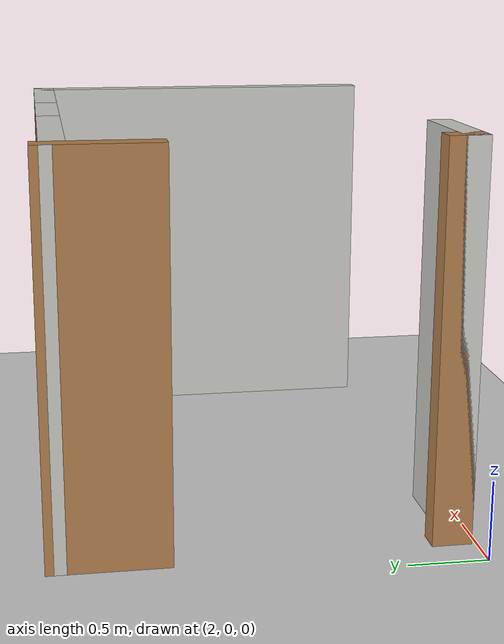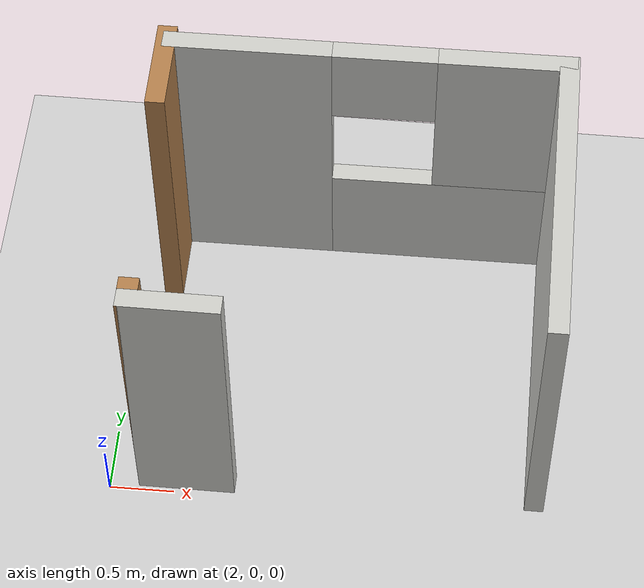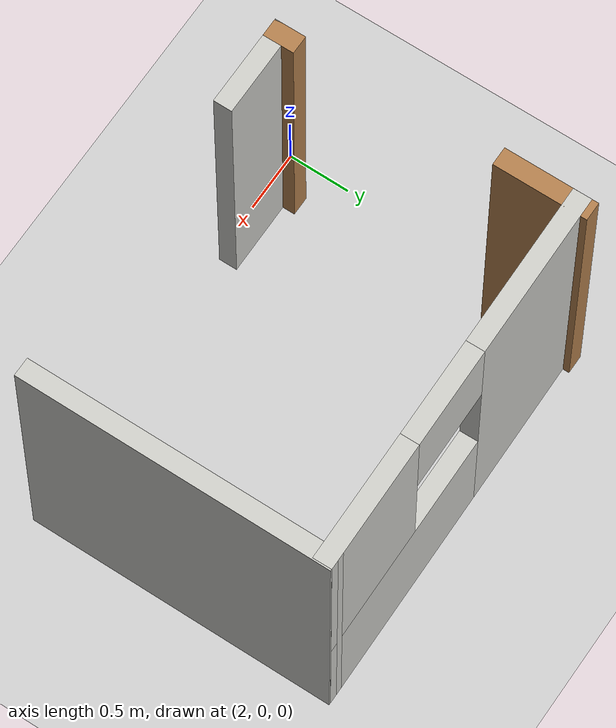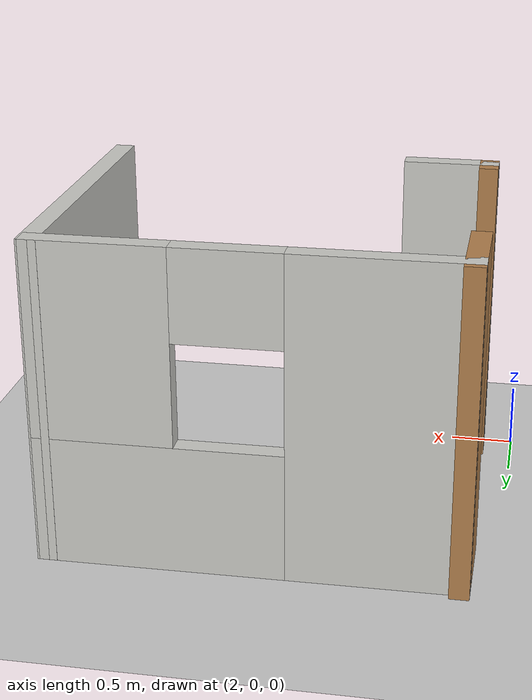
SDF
<sdf version="1.6">
 <world name="default">
  <light name="sun" type="directional">
   <pose>0 0 10 0 -0 0</pose>
   <diffuse>0.8 0.8 0.8 1</diffuse>
   <specular>0.2 0.2 0.2 1</specular>
   <attenuation>
    <range>1000</range>
    <constant>0.9</constant>
    <linear>0.01</linear>
    <quadratic>0.001</quadratic>
   </attenuation>
   <direction>-0.5 0.1 -0.9</direction>
  </light>
  <model name="ground_plane">
   <static>1</static>
   <link name="link">
    <collision name="collision">
     <geometry><plane><normal>0 0 1</normal><size>100 100</size></plane></geometry>
     <surface>
      <contact><collide_bitmask>65535</collide_bitmask></contact>
      <friction><ode><mu>100</mu><mu2>50</mu2></ode></friction>
     </surface>
    </collision>
    <visual name="visual">
     <cast_shadows>0</cast_shadows>
     <geometry><plane><normal>0 0 1</normal><size>100 100</size></plane></geometry>
     <material>
      <script><uri>file://media/materials/scripts/gazebo.material</uri><name>Gazebo/Grey</name></script>
     </material>
    </visual>
   </link>
  </model>
  <gravity>0 0 -9.8</gravity>
  <magnetic_field>6e-06 2.3e-05 -4.2e-05</magnetic_field>
  <atmosphere type="adiabatic"/>
  <physics name="default_physics" default="0" type="ode">
   <max_step_size>0.001</max_step_size>
   <real_time_factor>1</real_time_factor>
   <real_time_update_rate>1000</real_time_update_rate>
  </physics>
  <scene><ambient>0.4 0.4 0.4 1</ambient><background>0.7 0.7 0.7 1</background><shadows>1</shadows></scene>
  <audio><device>default</device></audio>
  <spherical_coordinates>
   <surface_model>EARTH_WGS84</surface_model>
   <latitude_deg>0</latitude_deg>
   <longitude_deg>0</longitude_deg>
   <elevation>0</elevation>
   <heading_deg>0</heading_deg>
  </spherical_coordinates>
  <model name="restroom">
   <pose>3.782 1.32237 0 0 -0 0</pose>
   <link name="Wall_12">
    <collision name="Wall_12_Collision">
     <geometry><box><size>0.75 0.15 2.5</size></box></geometry>
     <pose>0 0 1.25 0 -0 0</pose>
    </collision>
    <visual name="Wall_12_Visual">
     <pose>0 0 1.25 0 -0 0</pose>
     <geometry><box><size>0.75 0.15 2.5</size></box></geometry>
     <material>
      <script><uri>file://media/materials/scripts/gazebo.material</uri><name>Gazebo/Wood</name></script>
      <ambient>1 1 1 1</ambient>
     </material>
     <meta><layer>0</layer></meta>
    </visual>
    <pose>-1.52425 0.914238 0 0 -0 -1.5708</pose>
   </link>
   <link name="Wall_14">
    <pose>-0.006278 1.17375 0 0 -0 0.007976</pose>
    <visual name="Wall_14_Visual_0">
     <pose>-0.924011 0 1.25 0 -0 0</pose>
     <geometry><box><size>1.33802 0.15 2.5</size></box></geometry>
     <material>
      <script><uri>file://media/materials/scripts/gazebo.material</uri><name>Gazebo/CeilingTiled</name></script>
      <ambient>1 1 1 1</ambient>
     </material>
     <meta><layer>0</layer></meta>
    </visual>
    <collision name="Wall_14_Collision_0">
     <geometry><box><size>1.33802 0.15 2.5</size></box></geometry>
     <pose>-0.924011 0 1.25 0 -0 0</pose>
    </collision>
    <visual name="Wall_14_Visual_1">
     <pose>0.669012 0 0.5 0 -0 0</pose>
     <geometry><box><size>1.84802 0.15 1</size></box></geometry>
     <material>
      <script><uri>file://media/materials/scripts/gazebo.material</uri><name>Gazebo/CeilingTiled</name></script>
      <ambient>1 1 1 1</ambient>
     </material>
     <meta><layer>0</layer></meta>
    </visual>
    <collision name="Wall_14_Collision_1">
     <geometry><box><size>1.84802 0.15 1</size></box></geometry>
     <pose>0.669012 0 0.5 0 -0 0</pose>
    </collision>
    <visual name="Wall_14_Visual_2">
     <pose>1.06901 0 1.75 0 -0 0</pose>
     <geometry><box><size>1.04802 0.15 1.5</size></box></geometry>
     <material>
      <script><uri>file://media/materials/scripts/gazebo.material</uri><name>Gazebo/CeilingTiled</name></script>
      <ambient>1 1 1 1</ambient>
     </material>
     <meta><layer>0</layer></meta>
    </visual>
    <collision name="Wall_14_Collision_2">
     <geometry><box><size>1.04802 0.15 1.5</size></box></geometry>
     <pose>1.06901 0 1.75 0 -0 0</pose>
    </collision>
    <visual name="Wall_14_Visual_3">
     <pose>0.145001 0 2.15 0 -0 0</pose>
     <geometry><box><size>0.8 0.15 0.7</size></box></geometry>
     <material>
      <script><uri>file://media/materials/scripts/gazebo.material</uri><name>Gazebo/CeilingTiled</name></script>
      <ambient>1 1 1 1</ambient>
     </material>
     <meta><layer>0</layer></meta>
    </visual>
    <collision name="Wall_14_Collision_3">
     <geometry><box><size>0.8 0.15 0.7</size></box></geometry>
     <pose>0.145001 0 2.15 0 -0 0</pose>
    </collision>
   </link>
   <link name="Wall_16">
    <collision name="Wall_16_Collision">
     <geometry><box><size>2.5 0.15 2.5</size></box></geometry>
     <pose>0 0 1.25 0 -0 0</pose>
    </collision>
    <visual name="Wall_16_Visual">
     <pose>0 0 1.25 0 -0 0</pose>
     <geometry><box><size>2.5 0.15 2.5</size></box></geometry>
     <material>
      <script><uri>file://media/materials/scripts/gazebo.material</uri><name>Gazebo/CeilingTiled</name></script>
      <ambient>1 1 1 1</ambient>
     </material>
     <meta><layer>0</layer></meta>
    </visual>
    <pose>1.52485 0.010853 0 0 -0 -1.5708</pose>
   </link>
   <link name="Wall_18">
    <collision name="Wall_18_Collision">
     <geometry><box><size>0.25 0.15 2.5</size></box></geometry>
     <pose>0 0 1.25 0 -0 0</pose>
    </collision>
    <visual name="Wall_18_Visual">
     <pose>0 0 1.25 0 -0 0</pose>
     <geometry><box><size>0.25 0.15 2.5</size></box></geometry>
     <material>
      <script><uri>file://media/materials/scripts/gazebo.material</uri><name>Gazebo/Wood</name></script>
      <ambient>1 1 1 1</ambient>
     </material>
     <meta><layer>0</layer></meta>
    </visual>
    <pose>-1.48262 -1.16424 0 0 -0 1.5708</pose>
   </link>
   <link name="Wall_20">
    <collision name="Wall_20_Collision">
     <geometry><box><size>0.75 0.15 2.5</size></box></geometry>
     <pose>0 0 1.25 0 -0 0</pose>
    </collision>
    <visual name="Wall_20_Visual">
     <pose>0 0 1.25 0 -0 0</pose>
     <geometry><box><size>0.75 0.15 2.5</size></box></geometry>
     <material>
      <script><uri>file://media/materials/scripts/gazebo.material</uri><name>Gazebo/CeilingTiled</name></script>
      <ambient>1 1 1 1</ambient>
     </material>
     <meta><layer>0</layer></meta>
    </visual>
    <pose>-1.18262 -1.21424 0 0 -0 0</pose>
   </link>
   <static>1</static>
  </model>
  <light name="user_spot_light_0" type="spot">
   <pose>4.29136 0.785322 1 0 -0 0</pose>
   <diffuse>0.5 0.5 0.5 1</diffuse>
   <specular>0.1 0.1 0.1 1</specular>
   <direction>0 0 -1</direction>
   <attenuation>
    <range>20</range>
    <constant>0.5</constant>
    <linear>0.01</linear>
    <quadratic>0.001</quadratic>
   </attenuation>
   <cast_shadows>0</cast_shadows>
   <spot><inner_angle>0.6</inner_angle><outer_angle>1</outer_angle><falloff>1</falloff></spot>
  </light>
  <light name="user_spot_light_1" type="spot">
   <pose>2.57451 1.00658 1 0 -0 0</pose>
   <diffuse>0.5 0.5 0.5 1</diffuse>
   <specular>0.1 0.1 0.1 1</specular>
   <direction>0 0 -1</direction>
   <attenuation>
    <range>20</range>
    <constant>0.5</constant>
    <linear>0.01</linear>
    <quadratic>0.001</quadratic>
   </attenuation>
   <cast_shadows>0</cast_shadows>
   <spot><inner_angle>0.6</inner_angle><outer_angle>1</outer_angle><falloff>1</falloff></spot>
  </light>
 </world>
</sdf>
